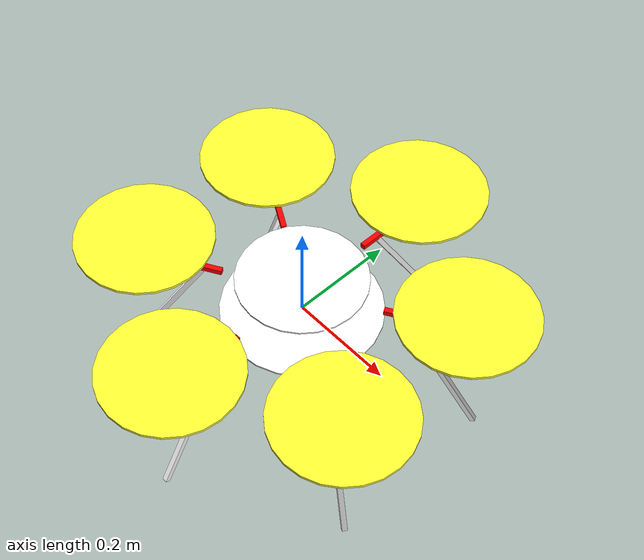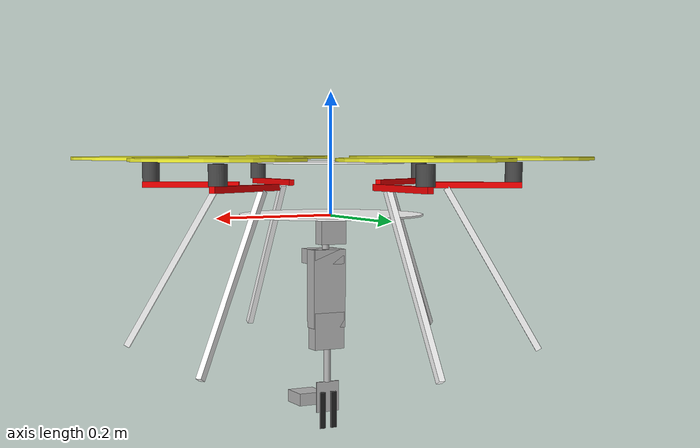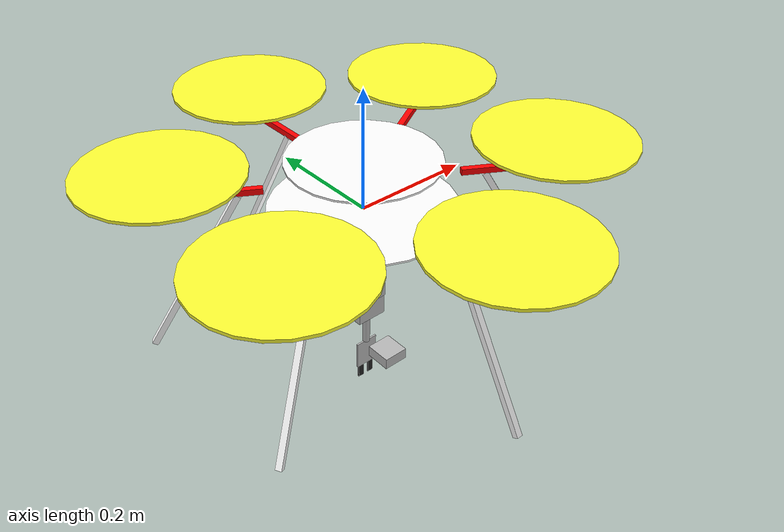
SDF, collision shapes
<?xml version="1.0" ?>
<sdf version="1.9">
  <model name="custom_hexa_arm">
    <static>false</static>
    <pose>0 0 0 0 0 0</pose>

<!-- ######################################## LOWER_PLATE # ######################################## -->
    <link name="base_link">
	<gravity>true</gravity>
	<pose>0 0 0.0015 0 0 0</pose>

      <inertial>
        <!-- Combined base+top+battery+electronics modeled as a thick regular-hexagon prism -->
        <!-- Parameters: M=1.9949 kg, circumradius R=0.15 m, thickness h=0.085 m -->
        <!-- Ixx = Iyy = (5/24) M R^2 + (M h^2)/12;  Izz = (5/12) M R^2;  CoM at z = h/2 -->
        <pose>0 0 0.0425 0 0 0</pose>
        <mass>1.9949</mass>
        <inertia>
          <ixx>0.0105521906</ixx>
          <ixy>0</ixy>
          <ixz>0</ixz>
          <iyy>0.0105521906</iyy>
          <iyz>0</iyz>
          <izz>0.0187021875</izz>
        </inertia>
      </inertial>

      <collision name="base_link_collision">
        <geometry>
          <cylinder>
            <radius>0.15</radius>
            <length>0.003</length>
          </cylinder>
        </geometry>
      </collision>

      <visual name="base_link_visual">
        <geometry>
          <mesh>
            <scale>0.0014 0.0014 0.0014</scale>
            <uri>file://custom_hexa/meshes/Lower_plate_CG.STL</uri>
          </mesh>
        </geometry>
        <material>
          <ambient>0.9 0.9 0.9 1</ambient>
          <diffuse>1.0 1.0 1.0 1</diffuse>
          <specular>0.8 0.8 0.8 1</specular>
        </material>
      </visual>

      <!-- IMU Sensor (modeled after ICM-42688-P) -->
      <sensor name="imu_sensor" type="imu">
        <pose>0 0 0.02 0 0 0</pose>
        <always_on>1</always_on>
        <update_rate>250</update_rate>
        <imu>
          <angular_velocity>
            <x>
              <noise type="gaussian">
                <mean>0</mean>
                <stddev>0.0003394</stddev>
                <dynamic_bias_stddev>3.8785e-05</dynamic_bias_stddev>
                <dynamic_bias_correlation_time>1000</dynamic_bias_correlation_time>
              </noise>
            </x>
            <y>
              <noise type="gaussian">
                <mean>0</mean>
                <stddev>0.0003394</stddev>
                <dynamic_bias_stddev>3.8785e-05</dynamic_bias_stddev>
                <dynamic_bias_correlation_time>1000</dynamic_bias_correlation_time>
              </noise>
            </y>
            <z>
              <noise type="gaussian">
                <mean>0</mean>
                <stddev>0.0003394</stddev>
                <dynamic_bias_stddev>3.8785e-05</dynamic_bias_stddev>
                <dynamic_bias_correlation_time>1000</dynamic_bias_correlation_time>
              </noise>
            </z>
          </angular_velocity>
          <linear_acceleration>
            <x>
              <noise type="gaussian">
                <mean>0</mean>
                <stddev>0.004</stddev>
                <dynamic_bias_stddev>0.006</dynamic_bias_stddev>
                <dynamic_bias_correlation_time>300</dynamic_bias_correlation_time>
              </noise>
            </x>
            <y>
              <noise type="gaussian">
                <mean>0</mean>
                <stddev>0.004</stddev>
                <dynamic_bias_stddev>0.006</dynamic_bias_stddev>
                <dynamic_bias_correlation_time>300</dynamic_bias_correlation_time>
              </noise>
            </y>
            <z>
              <noise type="gaussian">
                <mean>0</mean>
                <stddev>0.004</stddev>
                <dynamic_bias_stddev>0.006</dynamic_bias_stddev>
                <dynamic_bias_correlation_time>300</dynamic_bias_correlation_time>
              </noise>
            </z>
          </linear_acceleration>
        </imu>
      </sensor>

      <!-- Air Pressure Sensor (Barometer, modeled after BMP390) -->
      <sensor name="air_pressure_sensor" type="air_pressure">
        <always_on>1</always_on>
        <update_rate>50</update_rate>
        <air_pressure>
          <pressure>
            <noise type="gaussian">
              <mean>0</mean>
              <stddev>0.01</stddev>
            </noise>
          </pressure>
        </air_pressure>
      </sensor>

      <!-- GPS/NavSat Sensor (simplified for compatibility) -->
      <sensor name="navsat_sensor" type="navsat">
        <pose>0 0 0.03 0 0 0</pose>
        <always_on>1</always_on>
        <update_rate>10</update_rate>
      </sensor>

      <!-- Magnetometer Sensor (modeled after IIS2MDC) -->
      <sensor name="magnetometer_sensor" type="magnetometer">
        <pose>0 0 0.02 0 0 0</pose>
        <always_on>1</always_on>
        <update_rate>100</update_rate>
        <magnetometer>
          <!-- 3mgauss RMS: NOTE: noise is in tesla but sensor reports data in gauss -->
          <x>
            <noise type="gaussian">
              <stddev>0.0001</stddev>
            </noise>
          </x>
          <y>
            <noise type="gaussian">
              <stddev>0.0001</stddev>
            </noise>
          </y>
          <z>
            <noise type="gaussian">
              <stddev>0.0001</stddev>
            </noise>
          </z>
        </magnetometer>
      </sensor>      <!-- RGB Camera Sensor at ~15 Hz -->
    </link>
<!-- ####################################### /LOWER_PLATE # ######################################## -->

<!-- ######################################## TOP_PLATE ############################################ -->
  <link name="Top_plate_link">
  <gravity>true</gravity>
  <pose>0 0 0.0865 0 0 0</pose>

      <inertial>
        <!-- Visual-only inertial; mass is accounted for in base_link -->
        <pose>0 0 0 0 0 0</pose>
        <mass>0.001</mass>
        <inertia>
          <ixx>4.76e-06</ixx>
          <ixy>0</ixy>
          <ixz>0</ixz>
          <iyy>4.76e-06</iyy>
          <iyz>0</iyz>
          <izz>9.38e-06</izz>
        </inertia>
      </inertial>

      <collision name="top_plate_collision">
        <geometry>
          <cylinder>
            <radius>0.12</radius>
            <length>0.003</length>
          </cylinder>
        </geometry>
      </collision>

      <visual name="visual_Top_plate">
        <geometry>
          <mesh>
            <scale>0.0014 0.0014 0.0014</scale>
            <uri>file://custom_hexa/meshes/Top_plate_CG.STL</uri>
          </mesh>
        </geometry>
        <material>
          <ambient>0.9 0.9 0.9 1</ambient>
          <diffuse>1.0 1.0 1.0 1</diffuse>
          <specular>0.9 0.9 0.9 1</specular>
        </material>
      </visual>
    </link>

	<joint name='Lower_Top_joint' type='fixed'>
	  	<child>Top_plate_link</child>
	  	<parent>base_link</parent>
	</joint>
<!-- ####################################### /TOP_PLATE ############################################ -->

<!-- ##########################################  CAMERA  ########################################### -->

<!-- ##########################################  /CAMERA  ########################################## -->

<!-- ##########################################  IMU  ############################################## -->
    <link name='imu_link'>
      <pose>0 0 0.0865 0 0 3.1415927</pose>
      <inertial>
        <pose>0 0 0 0 -0 0</pose>
        <mass>0.0001</mass>
        <inertia>
          <ixx>1e-09</ixx>
          <ixy>0</ixy>
          <ixz>0</ixz>
          <iyy>1e-09</iyy>
          <iyz>0</iyz>
          <izz>1e-09</izz>
        </inertia>
      </inertial>

      <visual name="visual_imu">
	      <pose>0 0 0 0 0 3.1415927</pose>
        <geometry>
          <box>
			<size>0.01 0.02 0.02</size>
          </box>
        </geometry>
      </visual>
    </link>

    <joint name='imu_joint' type='fixed'>
      <child>imu_link</child>
      <parent>Top_plate_link</parent>
    </joint>
<!-- #########################################  /IMU  ############################################## -->

<!-- ############################################# ARM1 ############################################ -->
  <link name="Arm1_link">
  <gravity>true</gravity>
  <pose>0 0.15 0.055 0 0 1.57079632679</pose>

	<inertial>
    <pose>0.079425 0 -0.005 0 0 0</pose>
    <mass>0.0126</mass>
    <inertia>
      <ixx>3.44e-07</ixx>
      <ixy>0</ixy>
      <ixz>0</ixz>
      <iyy>2.66e-05</iyy>
      <iyz>0</iyz>
      <izz>2.66e-05</izz>
    </inertia>
  </inertial>

  <collision name="collision_Arm1">
    <pose>0.079425 0 -0.005 0 0 0</pose>
    <geometry>
      <box>
        <size>0.15885 0.01 0.01</size>
      </box>
    </geometry>
  </collision>

    <visual name="visual_Arm1">
      <pose>0.079425 0 -0.005 0 0 0</pose>
      <geometry>
        <box>
          <size>0.15885 0.01 0.01</size>
        </box>
      </geometry>
      <material>
        <ambient>0.8 0.0 0.0 1</ambient>
        <diffuse>1.0 0.0 0.0 1</diffuse>
        <specular>0.5 0.5 0.5 1</specular>
      </material>
    </visual>
	</link>

	<joint name='Lower_Arm1_joint' type='fixed'>
	  	<child>Arm1_link</child>
	  	<parent>base_link</parent>
	</joint>
<!-- ############################################ /ARM1 ############################################ -->

<!-- ############################################# ARM2 ############################################ -->
  <link name="Arm2_link">
  <gravity>true</gravity>
  <pose>0.129903810567 0.075 0.055 0 0 0.523598775598</pose>

      <inertial>
    	<pose>0.079425 0 -0.005 0 0 0</pose>
        <mass>0.0126</mass>
        <inertia>
            <ixx>3.44e-07</ixx>
          <ixy>0</ixy>
          <ixz>0</ixz>
          <iyy>2.66e-05</iyy>
          <iyz>0</iyz>
          <izz>2.66e-05</izz>
        </inertia>
      </inertial>

      <collision name="collision_Arm2">
        <pose>0.079425 0 -0.005 0 0 0</pose>
        <geometry>
          <box>
            <size>0.15885 0.01 0.01</size>
          </box>
        </geometry>
      </collision>

      <visual name="visual_Arm2">
        <pose>0.079425 0 -0.005 0 0 0</pose>
        <geometry>
          <box>
            <size>0.15885 0.01 0.01</size>
          </box>
        </geometry>
        <material>
          <ambient>0.8 0.0 0.0 1</ambient>
          <diffuse>1.0 0.0 0.0 1</diffuse>
          <specular>0.5 0.5 0.5 1</specular>
        </material>
      </visual>
    </link>

	<joint name='Lower_Arm2_joint' type='fixed'>
	  	<child>Arm2_link</child>
	  	<parent>base_link</parent>
	</joint>
<!-- ############################################ /ARM2 ############################################ -->

<!-- ############################################# ARM3 ############################################ -->
  <link name="Arm3_link">
  <gravity>true</gravity>
  <pose>0.129903810567 -0.075 0.055 0 0 -0.523598775598</pose>

      <inertial>
    	<pose>0.079425 0 -0.005 0 0 0</pose>
        <mass>0.0126</mass>
        <inertia>
            <ixx>3.44e-07</ixx>
          <ixy>0</ixy>
          <ixz>0</ixz>
          <iyy>2.66e-05</iyy>
          <iyz>0</iyz>
          <izz>2.66e-05</izz>
        </inertia>
      </inertial>

      <collision name="collision_Arm3">
        <pose>0.079425 0 -0.005 0 0 0</pose>
        <geometry>
          <box>
            <size>0.15885 0.01 0.01</size>
          </box>
        </geometry>
      </collision>

      <visual name="visual_Arm3">
        <pose>0.079425 0 -0.005 0 0 0</pose>
        <geometry>
          <box>
            <size>0.15885 0.01 0.01</size>
          </box>
        </geometry>
        <material>
          <ambient>0.8 0.0 0.0 1</ambient>
          <diffuse>1.0 0.0 0.0 1</diffuse>
          <specular>0.5 0.5 0.5 1</specular>
        </material>
      </visual>
    </link>

	<joint name='Lower_Arm3_joint' type='fixed'>
	  	<child>Arm3_link</child>
	  	<parent>base_link</parent>
	</joint>
<!-- ############################################ /ARM3 ############################################ -->

<!-- ############################################# ARM4 ############################################ -->
  <link name="Arm4_link">
  <gravity>true</gravity>
  <pose>0 -0.15 0.055 0 0 -1.57079632679</pose>

      <inertial>
    	<pose>0.079425 0 -0.005 0 0 0</pose>
        <mass>0.0126</mass>
        <inertia>
            <ixx>3.44e-07</ixx>
          <ixy>0</ixy>
          <ixz>0</ixz>
          <iyy>2.66e-05</iyy>
          <iyz>0</iyz>
          <izz>2.66e-05</izz>
        </inertia>
      </inertial>

      <collision name="collision_Arm4">
        <pose>0.079425 0 -0.005 0 0 0</pose>
        <geometry>
          <box>
            <size>0.15885 0.01 0.01</size>
          </box>
        </geometry>
      </collision>

      <visual name="visual_Arm4">
        <pose>0.079425 0 -0.005 0 0 0</pose>
        <geometry>
          <box>
            <size>0.15885 0.01 0.01</size>
          </box>
        </geometry>
        <material>
          <ambient>0.8 0.0 0.0 1</ambient>
          <diffuse>1.0 0.0 0.0 1</diffuse>
          <specular>0.5 0.5 0.5 1</specular>
        </material>
      </visual>
    </link>

	<joint name='Lower_Arm4_joint' type='fixed'>
	  	<child>Arm4_link</child>
	  	<parent>base_link</parent>
	</joint>
<!-- ############################################ /ARM4 ############################################ -->

<!-- ############################################# ARM5 ############################################ -->
  <link name="Arm5_link">
  <gravity>true</gravity>
  <pose>-0.129903810567 -0.075 0.055 0 0 3.66519142919</pose>

      <inertial>
    	<pose>0.079425 0 -0.005 0 0 0</pose>
        <mass>0.0126</mass>
        <inertia>
            <ixx>3.44e-07</ixx>
          <ixy>0</ixy>
          <ixz>0</ixz>
          <iyy>2.66e-05</iyy>
          <iyz>0</iyz>
          <izz>2.66e-05</izz>
        </inertia>
      </inertial>

      <collision name="collision_Arm5">
        <pose>0.079425 0 -0.005 0 0 0</pose>
        <geometry>
          <box>
            <size>0.15885 0.01 0.01</size>
          </box>
        </geometry>
      </collision>

      <visual name="visual_Arm5">
        <pose>0.079425 0 -0.005 0 0 0</pose>
        <geometry>
          <box>
            <size>0.15885 0.01 0.01</size>
          </box>
        </geometry>
        <material>
          <ambient>0.8 0.0 0.0 1</ambient>
          <diffuse>1.0 0.0 0.0 1</diffuse>
          <specular>0.5 0.5 0.5 1</specular>
        </material>
      </visual>
    </link>

	<joint name='Lower_Arm5_joint' type='fixed'>
	  	<child>Arm5_link</child>
	  	<parent>base_link</parent>
	</joint>
<!-- ############################################ /ARM5 ############################################ -->

<!-- ############################################# ARM6 ############################################ -->
  <link name="Arm6_link">
  <gravity>true</gravity>
  <pose>-0.129903810567 0.075 0.055 0 0 2.61799387799</pose>

      <inertial>
    	<pose>0.079425 0 -0.005 0 0 0</pose>
        <mass>0.0126</mass>
        <inertia>
            <ixx>3.44e-07</ixx>
          <ixy>0</ixy>
          <ixz>0</ixz>
          <iyy>2.66e-05</iyy>
          <iyz>0</iyz>
          <izz>2.66e-05</izz>
        </inertia>
      </inertial>

      <collision name="collision_Arm6">
        <pose>0.079425 0 -0.005 0 0 0</pose>
        <geometry>
          <box>
            <size>0.15885 0.01 0.01</size>
          </box>
        </geometry>
      </collision>

      <visual name="visual_Arm6">
        <pose>0.079425 0 -0.005 0 0 0</pose>
        <geometry>
          <box>
            <size>0.15885 0.01 0.01</size>
          </box>
        </geometry>
        <material>
          <ambient>0.8 0.0 0.0 1</ambient>
          <diffuse>1.0 0.0 0.0 1</diffuse>
          <specular>0.5 0.5 0.5 1</specular>
        </material>
      </visual>
    </link>

	<joint name='Lower_Arm6_joint' type='fixed'>
	  	<child>Arm6_link</child>
	  	<parent>base_link</parent>
	</joint>
<!-- ############################################ /ARM6 ############################################ -->

<!-- #########################################  ROTOR0  ############################################ -->
<link name='rotor_0'>
  <pose>-0.255691 0.1475 0.093 0 0 2.09439510239</pose>
      <inertial>
        <mass>0.008</mass>
        <inertia>
          <ixx>5.205e-05</ixx>
          <ixy>0</ixy>
          <ixz>0</ixz>
          <iyy>2.667e-07</iyy>
          <iyz>0</iyz>
          <izz>5.230e-05</izz>
        </inertia>
      </inertial>

      <collision name='rotor_0_collision'>
        <geometry>
          <cylinder>
            <length>0.005</length>
            <radius>0.128</radius>
          </cylinder>
        </geometry>
        <surface>
          <contact>
            <collide_bitmask>0x00</collide_bitmask>
            <ode/>
          </contact>
          <friction>
            <ode/>
          </friction>
        </surface>
      </collision>

      <visual name='rotor_0_visual'>
        <geometry>
          <mesh>
            <scale>0.001 0.001 0.001</scale>
            <uri>file://custom_hexa/meshes/prop_cw_CG.stl</uri>
          </mesh>
        </geometry>
        <material>
          <ambient>1.0 1.0 0.0 1</ambient>
          <diffuse>1.0 1.0 0.2 1</diffuse>
          <specular>0.8 0.8 0.0 1</specular>
        </material>
      </visual>
    </link>

    <joint name='rotor_0_joint' type='revolute'>
      <child>rotor_0</child>
      <parent>base_link</parent>
      <axis>
  <xyz expressed_in="__model__">0 0 1</xyz>
        <limit>
          <lower>-1e+16</lower>
          <upper>1e+16</upper>
          <!-- Increased effort limit to avoid artificial torque saturation during spin-up/control -->
          <effort>100000</effort>
          <!-- Set a large positive velocity limit to avoid artificial clamping -->
          <velocity>4000</velocity>
        </limit>
        <dynamics>
          <damping>0.005</damping>
        </dynamics>
      </axis>
      <physics>
        <ode>
          <implicit_spring_damper>1</implicit_spring_damper>
        </ode>
      </physics>
    </joint>
<!-- ########################################  /ROTOR0  ############################################ -->

<!-- ##########################################  MOTOR0  ############################################ -->
  <link name='motor_0'>
    <!-- Place at radius 0.295 and z=0.071 -->
    <pose>-0.255691 0.1475 0.071 0 0 2.09439510239</pose>
    <inertial>
      <mass>0.072</mass>
      <inertia>
        <ixx>8.928e-06</ixx>
        <ixy>0</ixy>
        <ixz>0</ixz>
        <iyy>8.928e-06</iyy>
        <iyz>0</iyz>
        <izz>7.056e-06</izz>
      </inertia>
    </inertial>
    <collision name='motor_0_collision'>
      <geometry>
        <cylinder>
          <length>0.032</length>
          <radius>0.014</radius>
        </cylinder>
      </geometry>
    </collision>
    <visual name='motor_0_visual'>
      <geometry>
        <cylinder>
          <length>0.032</length>
          <radius>0.014</radius>
        </cylinder>
      </geometry>
      <material>
        <ambient>0.2 0.2 0.2 1</ambient>
        <diffuse>0.3 0.3 0.3 1</diffuse>
        <specular>0.6 0.6 0.6 1</specular>
      </material>
    </visual>
  </link>
  <joint name='base_motor_0' type='fixed'>
    <child>motor_0</child>
    <parent>base_link</parent>
  </joint>

<!-- #########################################  ROTOR1  ############################################ -->
<link name='rotor_1'>
  <pose>0.255691 -0.1475 0.093 0 0 -2.09439510239</pose>
      <inertial>
        <mass>0.008</mass>
        <inertia>
          <ixx>5.205e-05</ixx>
          <ixy>0</ixy>
          <ixz>0</ixz>
          <iyy>2.667e-07</iyy>
          <iyz>0</iyz>
          <izz>5.230e-05</izz>
        </inertia>
      </inertial>

      <collision name='rotor_1_collision'>
        <geometry>
          <cylinder>
            <length>0.005</length>
            <radius>0.128</radius>
          </cylinder>
        </geometry>
        <surface>
          <contact>
            <collide_bitmask>0x00</collide_bitmask>
            <ode/>
          </contact>
          <friction>
            <ode/>
          </friction>
        </surface>
      </collision>

      <visual name='rotor_1_visual'>
        <geometry>
          <mesh>
            <scale>0.001 0.001 0.001</scale>
            <uri>file://custom_hexa/meshes/prop_ccw_CG.stl</uri>
          </mesh>
        </geometry>
        <material>
          <ambient>1.0 1.0 0.0 1</ambient>
          <diffuse>1.0 1.0 0.2 1</diffuse>
          <specular>0.8 0.8 0.0 1</specular>
        </material>
      </visual>
    </link>

    <joint name='rotor_1_joint' type='revolute'>
      <child>rotor_1</child>
      <parent>base_link</parent>
      <axis>
  <xyz expressed_in="__model__">0 0 1</xyz>
        <limit>
          <lower>-1e+16</lower>
          <upper>1e+16</upper>
          <effort>100000</effort>
          <velocity>4000</velocity>
        </limit>
        <dynamics>
          <damping>0.005</damping>
        </dynamics>
      </axis>
      <physics>
        <ode>
          <implicit_spring_damper>1</implicit_spring_damper>
        </ode>
      </physics>
    </joint>
<!-- ########################################  /ROTOR1  ############################################ -->

<!-- ##########################################  MOTOR1  ############################################ -->
  <link name='motor_1'>
    <pose>0.255691 -0.1475 0.071 0 0 -2.09439510239</pose>
    <inertial>
      <mass>0.072</mass>
      <inertia>
        <ixx>8.928e-06</ixx>
        <ixy>0</ixy>
        <ixz>0</ixz>
        <iyy>8.928e-06</iyy>
        <iyz>0</iyz>
        <izz>7.056e-06</izz>
      </inertia>
    </inertial>
    <collision name='motor_1_collision'>
      <geometry>
        <cylinder>
          <length>0.032</length>
          <radius>0.014</radius>
        </cylinder>
      </geometry>
    </collision>
    <visual name='motor_1_visual'>
      <geometry>
        <cylinder>
          <length>0.032</length>
          <radius>0.014</radius>
        </cylinder>
      </geometry>
      <material>
        <ambient>0.2 0.2 0.2 1</ambient>
        <diffuse>0.3 0.3 0.3 1</diffuse>
        <specular>0.6 0.6 0.6 1</specular>
      </material>
    </visual>
  </link>
  <joint name='base_motor_1' type='fixed'>
    <child>motor_1</child>
    <parent>base_link</parent>
  </joint>

<!-- #########################################  ROTOR2  ############################################ -->
<link name='rotor_2'>
  <pose>-0.255691 -0.1475 0.093 0 0 2.09439510239</pose>
      <inertial>
        <mass>0.008</mass>
        <inertia>
          <ixx>5.205e-05</ixx>
          <ixy>0</ixy>
          <ixz>0</ixz>
          <iyy>2.667e-07</iyy>
          <iyz>0</iyz>
          <izz>5.230e-05</izz>
        </inertia>
      </inertial>

      <collision name='rotor_2_collision'>
        <geometry>
          <cylinder>
            <length>0.005</length>
            <radius>0.128</radius>
          </cylinder>
        </geometry>
        <surface>
          <contact>
            <collide_bitmask>0x00</collide_bitmask>
            <ode/>
          </contact>
          <friction>
            <ode/>
          </friction>
        </surface>
      </collision>

      <visual name='rotor_2_visual'>
        <geometry>
          <mesh>
            <scale>0.001 0.001 0.001</scale>
            <uri>file://custom_hexa/meshes/prop_ccw_CG.stl</uri>
          </mesh>
        </geometry>
        <material>
          <ambient>1.0 1.0 0.0 1</ambient>
          <diffuse>1.0 1.0 0.2 1</diffuse>
          <specular>0.8 0.8 0.0 1</specular>
        </material>
      </visual>
    </link>

    <joint name='rotor_2_joint' type='revolute'>
      <child>rotor_2</child>
      <parent>base_link</parent>
      <axis>
  <xyz expressed_in="__model__">0 0 1</xyz>
        <limit>
          <lower>-1e+16</lower>
          <upper>1e+16</upper>
          <effort>100000</effort>
          <velocity>4000</velocity>
        </limit>
        <dynamics>
          <damping>0.005</damping>
        </dynamics>
      </axis>
      <physics>
        <ode>
          <implicit_spring_damper>1</implicit_spring_damper>
        </ode>
      </physics>
    </joint>
<!-- ########################################  /ROTOR2  ############################################ -->

<!-- ##########################################  MOTOR2  ############################################ -->
  <link name='motor_2'>
    <pose>-0.255691 -0.1475 0.071 0 0 2.09439510239</pose>
    <inertial>
      <mass>0.072</mass>
      <inertia>
        <ixx>8.928e-06</ixx>
        <ixy>0</ixy>
        <ixz>0</ixz>
        <iyy>8.928e-06</iyy>
        <iyz>0</iyz>
        <izz>7.056e-06</izz>
      </inertia>
    </inertial>
    <collision name='motor_2_collision'>
      <geometry>
        <cylinder>
          <length>0.032</length>
          <radius>0.014</radius>
        </cylinder>
      </geometry>
    </collision>
    <visual name='motor_2_visual'>
      <geometry>
        <cylinder>
          <length>0.032</length>
          <radius>0.014</radius>
        </cylinder>
      </geometry>
      <material>
        <ambient>0.2 0.2 0.2 1</ambient>
        <diffuse>0.3 0.3 0.3 1</diffuse>
        <specular>0.6 0.6 0.6 1</specular>
      </material>
    </visual>
  </link>
  <joint name='base_motor_2' type='fixed'>
    <child>motor_2</child>
    <parent>base_link</parent>
  </joint>

<!-- #########################################  ROTOR3  ############################################ -->
<link name='rotor_3'>
  <pose>0.255691 0.1475 0.093 0 0 0</pose>
      <inertial>
        <mass>0.008</mass>
        <inertia>
          <ixx>5.205e-05</ixx>
          <ixy>0</ixy>
          <ixz>0</ixz>
          <iyy>2.667e-07</iyy>
          <iyz>0</iyz>
          <izz>5.230e-05</izz>
        </inertia>
      </inertial>

      <collision name='rotor_3_collision'>
        <geometry>
          <cylinder>
            <length>0.005</length>
            <radius>0.128</radius>
          </cylinder>
        </geometry>
        <surface>
          <contact>
            <collide_bitmask>0x00</collide_bitmask>
            <ode/>
          </contact>
          <friction>
            <ode/>
          </friction>
        </surface>
      </collision>

      <visual name='rotor_3_visual'>
        <geometry>
          <mesh>
            <scale>0.001 0.001 0.001</scale>
            <uri>file://custom_hexa/meshes/prop_cw_CG.stl</uri>
          </mesh>
        </geometry>
        <material>
          <ambient>1.0 1.0 0.0 1</ambient>
          <diffuse>1.0 1.0 0.2 1</diffuse>
          <specular>0.8 0.8 0.0 1</specular>
        </material>
      </visual>
    </link>

    <joint name='rotor_3_joint' type='revolute'>
      <child>rotor_3</child>
      <parent>base_link</parent>
      <axis>
  <xyz expressed_in="__model__">0 0 1</xyz>
        <limit>
          <lower>-1e+16</lower>
          <upper>1e+16</upper>
          <effort>100000</effort>
          <velocity>4000</velocity>
        </limit>
        <dynamics>
          <damping>0.005</damping>
        </dynamics>
      </axis>
      <physics>
        <ode>
          <implicit_spring_damper>1</implicit_spring_damper>
        </ode>
      </physics>
    </joint>
<!-- ########################################  /ROTOR3  ############################################ -->

<!-- ##########################################  MOTOR3  ############################################ -->
  <link name='motor_3'>
    <pose>0.255691 0.1475 0.071 0 0 0</pose>
    <inertial>
      <mass>0.072</mass>
      <inertia>
        <ixx>8.928e-06</ixx>
        <ixy>0</ixy>
        <ixz>0</ixz>
        <iyy>8.928e-06</iyy>
        <iyz>0</iyz>
        <izz>7.056e-06</izz>
      </inertia>
    </inertial>
    <collision name='motor_3_collision'>
      <geometry>
        <cylinder>
          <length>0.032</length>
          <radius>0.014</radius>
        </cylinder>
      </geometry>
    </collision>
    <visual name='motor_3_visual'>
      <geometry>
        <cylinder>
          <length>0.032</length>
          <radius>0.014</radius>
        </cylinder>
      </geometry>
      <material>
        <ambient>0.2 0.2 0.2 1</ambient>
        <diffuse>0.3 0.3 0.3 1</diffuse>
        <specular>0.6 0.6 0.6 1</specular>
      </material>
    </visual>
  </link>
  <joint name='base_motor_3' type='fixed'>
    <child>motor_3</child>
    <parent>base_link</parent>
  </joint>

<!-- #########################################  ROTOR4  ############################################ -->
  <link name='rotor_4'>
  <pose>0 0.295 0.093 0 0 0</pose>
      <inertial>
        <mass>0.008</mass>
        <inertia>
          <ixx>5.205e-05</ixx>
          <ixy>0</ixy>
          <ixz>0</ixz>
          <iyy>2.667e-07</iyy>
          <iyz>0</iyz>
          <izz>5.230e-05</izz>
        </inertia>
      </inertial>

      <collision name='rotor_4_collision'>
        <geometry>
          <cylinder>
            <length>0.005</length>
            <radius>0.128</radius>
          </cylinder>
        </geometry>
        <surface>
          <contact>
            <collide_bitmask>0x00</collide_bitmask>
            <ode/>
          </contact>
          <friction>
            <ode/>
          </friction>
        </surface>
      </collision>

      <visual name='rotor_4_visual'>
        <geometry>
          <mesh>
            <scale>0.001 0.001 0.001</scale>
            <uri>file://custom_hexa/meshes/prop_ccw_CG.stl</uri>
          </mesh>
        </geometry>
        <material>
          <ambient>1.0 1.0 0.0 1</ambient>
          <diffuse>1.0 1.0 0.2 1</diffuse>
          <specular>0.8 0.8 0.0 1</specular>
        </material>
      </visual>
    </link>

    <joint name='rotor_4_joint' type='revolute'>
      <child>rotor_4</child>
      <parent>base_link</parent>
      <axis>
  <xyz expressed_in="__model__">0 0 1</xyz>
        <limit>
          <lower>-1e+16</lower>
          <upper>1e+16</upper>
          <effort>100000</effort>
          <velocity>4000</velocity>
        </limit>
        <dynamics>
          <damping>0.005</damping>
        </dynamics>
      </axis>
      <physics>
        <ode>
          <implicit_spring_damper>1</implicit_spring_damper>
        </ode>
      </physics>
    </joint>
<!-- ########################################  /ROTOR4  ############################################ -->

<!-- ##########################################  MOTOR4  ############################################ -->
  <link name='motor_4'>
    <pose>0 0.295 0.071 0 0 0</pose>
    <inertial>
      <mass>0.072</mass>
      <inertia>
        <ixx>8.928e-06</ixx>
        <ixy>0</ixy>
        <ixz>0</ixz>
        <iyy>8.928e-06</iyy>
        <iyz>0</iyz>
        <izz>7.056e-06</izz>
      </inertia>
    </inertial>
    <collision name='motor_4_collision'>
      <geometry>
        <cylinder>
          <length>0.032</length>
          <radius>0.014</radius>
        </cylinder>
      </geometry>
    </collision>
    <visual name='motor_4_visual'>
      <geometry>
        <cylinder>
          <length>0.032</length>
          <radius>0.014</radius>
        </cylinder>
      </geometry>
      <material>
        <ambient>0.2 0.2 0.2 1</ambient>
        <diffuse>0.3 0.3 0.3 1</diffuse>
        <specular>0.6 0.6 0.6 1</specular>
      </material>
    </visual>
  </link>
  <joint name='base_motor_4' type='fixed'>
    <child>motor_4</child>
    <parent>base_link</parent>
  </joint>

<!-- #########################################  ROTOR5  ############################################ -->
<link name='rotor_5'>
  <pose>0 -0.295 0.093 0 0 -2.09439510239</pose>
      <inertial>
        <mass>0.008</mass>
        <inertia>
          <ixx>5.205e-05</ixx>
          <ixy>0</ixy>
          <ixz>0</ixz>
          <iyy>2.667e-07</iyy>
          <iyz>0</iyz>
          <izz>5.230e-05</izz>
        </inertia>
      </inertial>

      <collision name='rotor_5_collision'>
        <geometry>
          <cylinder>
            <length>0.005</length>
            <radius>0.128</radius>
          </cylinder>
        </geometry>
        <surface>
          <contact>
            <collide_bitmask>0x00</collide_bitmask>
            <ode/>
          </contact>
          <friction>
            <ode/>
          </friction>
        </surface>
      </collision>

      <visual name='rotor_5_visual'>
        <geometry>
          <mesh>
            <scale>0.001 0.001 0.001</scale>
            <!-- Use clockwise prop mesh to alternate torque (rotors 0,3,5 cw; 1,2,4 ccw) -->
            <uri>file://custom_hexa/meshes/prop_cw_CG.stl</uri>
          </mesh>
        </geometry>
        <material>
          <ambient>1.0 1.0 0.0 1</ambient>
          <diffuse>1.0 1.0 0.2 1</diffuse>
          <specular>0.8 0.8 0.0 1</specular>
        </material>
      </visual>
    </link>

    <joint name='rotor_5_joint' type='revolute'>
      <child>rotor_5</child>
      <parent>base_link</parent>
      <axis>
  <xyz expressed_in="__model__">0 0 1</xyz>
        <limit>
          <lower>-1e+16</lower>
          <upper>1e+16</upper>
          <effort>100000</effort>
          <velocity>4000</velocity>
        </limit>
        <dynamics>
          <damping>0.005</damping>
        </dynamics>
      </axis>
      <physics>
        <ode>
          <implicit_spring_damper>1</implicit_spring_damper>
        </ode>
      </physics>
    </joint>
<!-- ########################################  /ROTOR5  ############################################ -->

<!-- ##########################################  MOTOR5  ############################################ -->
  <link name='motor_5'>
    <pose>0 -0.295 0.071 0 0 -2.09439510239</pose>
    <inertial>
      <mass>0.072</mass>
      <inertia>
        <ixx>8.928e-06</ixx>
        <ixy>0</ixy>
        <ixz>0</ixz>
        <iyy>8.928e-06</iyy>
        <iyz>0</iyz>
        <izz>7.056e-06</izz>
      </inertia>
    </inertial>
    <collision name='motor_5_collision'>
      <geometry>
        <cylinder>
          <length>0.032</length>
          <radius>0.014</radius>
        </cylinder>
      </geometry>
    </collision>
    <visual name='motor_5_visual'>
      <geometry>
        <cylinder>
          <length>0.032</length>
          <radius>0.014</radius>
        </cylinder>
      </geometry>
      <material>
        <ambient>0.2 0.2 0.2 1</ambient>
        <diffuse>0.3 0.3 0.3 1</diffuse>
        <specular>0.6 0.6 0.6 1</specular>
      </material>
    </visual>
  </link>
  <joint name='base_motor_5' type='fixed'>
    <child>motor_5</child>
    <parent>base_link</parent>
  </joint>

<!-- ######################################### LANDING GEAR STRUT 1 ################################# -->
<link name="landing_gear_1">
  <!-- Position at Arm1 location, radially outward (90° + 180°), 30° tilt from vertical -->
  <pose>0 0.1874 0.045 0 0.523598776 -1.57079632679</pose>

  <inertial>
    <pose>0 0 -0.151575 0 0 0</pose>
    <mass>0.02825</mass>
    <inertia>
      <ixx>2.17e-04</ixx>
      <ixy>0</ixy>
      <ixz>0</ixz>
      <iyy>2.17e-04</iyy>
      <iyz>0</iyz>
      <izz>7.73e-07</izz>
    </inertia>
  </inertial>

  <collision name="landing_gear_1_collision">
    <pose>0 0 -0.151575 0 0 0</pose>
    <geometry>
      <box>
        <size>0.01 0.01 0.30315</size>
      </box>
    </geometry>
  </collision>

  <visual name="landing_gear_1_visual">
    <pose>0 0 -0.151575 0 0 0</pose>
    <geometry>
      <box>
        <size>0.01 0.01 0.30315</size>
      </box>
    </geometry>
    <material>
      <ambient>1.0 1.0 1.0 1</ambient>
      <diffuse>1.0 1.0 1.0 1</diffuse>
      <specular>0.8 0.8 0.8 1</specular>
    </material>
  </visual>
</link>

<joint name="base_landing_gear_1" type="fixed">
  <child>landing_gear_1</child>
  <parent>base_link</parent>
</joint>

<!-- ######################################### /LANDING GEAR STRUT 1 ############################### -->

<!-- ######################################### LANDING GEAR STRUT 2 ################################# -->
<link name="landing_gear_2">
  <!-- Position at Arm2 location, radially outward (30° + 180°), 30° tilt from vertical -->
  <pose>0.162293160669 0.0937 0.045 0 0.523598776 3.66519142919</pose>

  <inertial>
    <pose>0 0 -0.151575 0 0 0</pose>
    <mass>0.02825</mass>
    <inertia>
      <ixx>2.17e-04</ixx>
      <ixy>0</ixy>
      <ixz>0</ixz>
      <iyy>2.17e-04</iyy>
      <iyz>0</iyz>
      <izz>7.73e-07</izz>
    </inertia>
  </inertial>

  <collision name="landing_gear_2_collision">
    <pose>0 0 -0.151575 0 0 0</pose>
    <geometry>
      <box>
        <size>0.01 0.01 0.30315</size>
      </box>
    </geometry>
  </collision>

  <visual name="landing_gear_2_visual">
    <pose>0 0 -0.151575 0 0 0</pose>
    <geometry>
      <box>
        <size>0.01 0.01 0.30315</size>
      </box>
    </geometry>
    <material>
      <ambient>1.0 1.0 1.0 1</ambient>
      <diffuse>1.0 1.0 1.0 1</diffuse>
      <specular>0.8 0.8 0.8 1</specular>
    </material>
  </visual>
</link>

<joint name="base_landing_gear_2" type="fixed">
  <child>landing_gear_2</child>
  <parent>base_link</parent>
</joint>

<!-- ######################################### /LANDING GEAR STRUT 2 ############################### -->

<!-- ######################################### LANDING GEAR STRUT 3 ################################# -->
<link name="landing_gear_3">
  <!-- Position at Arm3 location, radially outward (-30° + 180°), 30° tilt from vertical -->
  <pose>0.162293160669 -0.0937 0.045 0 0.523598776 2.61799387799</pose>

  <inertial>
    <pose>0 0 -0.151575 0 0 0</pose>
    <mass>0.02825</mass>
    <inertia>
      <ixx>2.17e-04</ixx>
      <ixy>0</ixy>
      <ixz>0</ixz>
      <iyy>2.17e-04</iyy>
      <iyz>0</iyz>
      <izz>7.73e-07</izz>
    </inertia>
  </inertial>

  <collision name="landing_gear_3_collision">
    <pose>0 0 -0.151575 0 0 0</pose>
    <geometry>
      <box>
        <size>0.01 0.01 0.30315</size>
      </box>
    </geometry>
  </collision>

  <visual name="landing_gear_3_visual">
    <pose>0 0 -0.151575 0 0 0</pose>
    <geometry>
      <box>
        <size>0.01 0.01 0.30315</size>
      </box>
    </geometry>
    <material>
      <ambient>1.0 1.0 1.0 1</ambient>
      <diffuse>1.0 1.0 1.0 1</diffuse>
      <specular>0.8 0.8 0.8 1</specular>
    </material>
  </visual>
</link>

<joint name="base_landing_gear_3" type="fixed">
  <child>landing_gear_3</child>
  <parent>base_link</parent>
</joint>

<!-- ######################################### /LANDING GEAR STRUT 3 ############################### -->

<!-- ######################################### LANDING GEAR STRUT 4 ################################# -->
<link name="landing_gear_4">
  <!-- Position at Arm4 location, radially outward (-90° + 180°), 30° tilt from vertical -->
  <pose>0 -0.1874 0.045 0 0.523598776 1.57079632679</pose>

  <inertial>
    <pose>0 0 -0.151575 0 0 0</pose>
    <mass>0.02825</mass>
    <inertia>
      <ixx>2.17e-04</ixx>
      <ixy>0</ixy>
      <ixz>0</ixz>
      <iyy>2.17e-04</iyy>
      <iyz>0</iyz>
      <izz>7.73e-07</izz>
    </inertia>
  </inertial>

  <collision name="landing_gear_4_collision">
    <pose>0 0 -0.151575 0 0 0</pose>
    <geometry>
      <box>
        <size>0.01 0.01 0.30315</size>
      </box>
    </geometry>
  </collision>

  <visual name="landing_gear_4_visual">
    <pose>0 0 -0.151575 0 0 0</pose>
    <geometry>
      <box>
        <size>0.01 0.01 0.30315</size>
      </box>
    </geometry>
    <material>
      <ambient>1.0 1.0 1.0 1</ambient>
      <diffuse>1.0 1.0 1.0 1</diffuse>
      <specular>0.8 0.8 0.8 1</specular>
    </material>
  </visual>
</link>

<joint name="base_landing_gear_4" type="fixed">
  <child>landing_gear_4</child>
  <parent>base_link</parent>
</joint>

<!-- ######################################### /LANDING GEAR STRUT 4 ############################### -->

<!-- ######################################### LANDING GEAR STRUT 5 ################################# -->
<link name="landing_gear_5">
  <!-- Position at Arm5 location, radially outward (210° + 180°), 30° tilt from vertical -->
  <pose>-0.162293160669 -0.0937 0.045 0 0.523598776 0.523598775598</pose>

  <inertial>
    <pose>0 0 -0.151575 0 0 0</pose>
    <mass>0.02825</mass>
    <inertia>
      <ixx>2.17e-04</ixx>
      <ixy>0</ixy>
      <ixz>0</ixz>
      <iyy>2.17e-04</iyy>
      <iyz>0</iyz>
      <izz>7.73e-07</izz>
    </inertia>
  </inertial>

  <collision name="landing_gear_5_collision">
    <pose>0 0 -0.151575 0 0 0</pose>
    <geometry>
      <box>
        <size>0.01 0.01 0.30315</size>
      </box>
    </geometry>
  </collision>

  <visual name="landing_gear_5_visual">
    <pose>0 0 -0.151575 0 0 0</pose>
    <geometry>
      <box>
        <size>0.01 0.01 0.30315</size>
      </box>
    </geometry>
    <material>
      <ambient>1.0 1.0 1.0 1</ambient>
      <diffuse>1.0 1.0 1.0 1</diffuse>
      <specular>0.8 0.8 0.8 1</specular>
    </material>
  </visual>
</link>

<joint name="base_landing_gear_5" type="fixed">
  <child>landing_gear_5</child>
  <parent>base_link</parent>
</joint>

<!-- ######################################### /LANDING GEAR STRUT 5 ############################### -->

<!-- ######################################### LANDING GEAR STRUT 6 ################################# -->
<link name="landing_gear_6">
  <!-- Position at Arm6 location, radially outward (150° + 180°), 30° tilt from vertical -->
  <pose>-0.162293160669 0.0937 0.045 0 0.523598776 -0.523598775598</pose>

  <inertial>
    <pose>0 0 -0.151575 0 0 0</pose>
    <mass>0.02825</mass>
    <inertia>
      <ixx>2.17e-04</ixx>
      <ixy>0</ixy>
      <ixz>0</ixz>
      <iyy>2.17e-04</iyy>
      <iyz>0</iyz>
      <izz>7.73e-07</izz>
    </inertia>
  </inertial>

  <collision name="landing_gear_6_collision">
    <pose>0 0 -0.151575 0 0 0</pose>
    <geometry>
      <box>
        <size>0.01 0.01 0.30315</size>
      </box>
    </geometry>
  </collision>

  <visual name="landing_gear_6_visual">
    <pose>0 0 -0.151575 0 0 0</pose>
    <geometry>
      <box>
        <size>0.01 0.01 0.30315</size>
      </box>
    </geometry>
    <material>
      <ambient>1.0 1.0 1.0 1</ambient>
      <diffuse>1.0 1.0 1.0 1</diffuse>
      <specular>0.8 0.8 0.8 1</specular>
    </material>
  </visual>
</link>

<joint name="base_landing_gear_6" type="fixed">
  <child>landing_gear_6</child>
  <parent>base_link</parent>
</joint>

<!-- ######################################### /LANDING GEAR STRUT 6 ############################### -->

        <!-- motor plugins -->

        <!-- Gazebo Harmonic Multicopter motor model plugins -->
        <!-- Motor: SunnySky X2216 KV1250, Battery: 4S LiPo (14.8V), Propeller: 11x5.7" CF -->
        <plugin filename="gz-sim-multicopter-motor-model-system" name="gz::sim::systems::MulticopterMotorModel">
          <robotNamespace>custom_hexa_arm_0</robotNamespace>
          <jointName>rotor_0_joint</jointName>
          <linkName>rotor_0</linkName>
          <turningDirection>cw</turningDirection>
          <timeConstantUp>0.015</timeConstantUp>
          <timeConstantDown>0.015</timeConstantDown>
          <maxRotVelocity>820.0</maxRotVelocity>
          <motorConstant>2.11e-05</motorConstant>
          <momentConstant>0.0168</momentConstant>
          <commandSubTopic>command/motor_speed</commandSubTopic>
          <actuator_number>0</actuator_number>
          <rotorDragCoefficient>8.06428e-05</rotorDragCoefficient>
          <rollingMomentCoefficient>1e-06</rollingMomentCoefficient>
          <rotorVelocitySlowdownSim>10</rotorVelocitySlowdownSim>
          <motorType>velocity</motorType>
        </plugin>
        <plugin filename="gz-sim-multicopter-motor-model-system" name="gz::sim::systems::MulticopterMotorModel">
          <robotNamespace>custom_hexa_arm_0</robotNamespace>
          <jointName>rotor_1_joint</jointName>
          <linkName>rotor_1</linkName>
          <turningDirection>ccw</turningDirection>
          <timeConstantUp>0.015</timeConstantUp>
          <timeConstantDown>0.015</timeConstantDown>
          <maxRotVelocity>820.0</maxRotVelocity>
          <motorConstant>2.11e-05</motorConstant>
          <momentConstant>0.0168</momentConstant>
          <commandSubTopic>command/motor_speed</commandSubTopic>
          <actuator_number>1</actuator_number>
          <rotorDragCoefficient>8.06428e-05</rotorDragCoefficient>
          <rollingMomentCoefficient>1e-06</rollingMomentCoefficient>
          <rotorVelocitySlowdownSim>10</rotorVelocitySlowdownSim>
          <motorType>velocity</motorType>
        </plugin>
        <plugin filename="gz-sim-multicopter-motor-model-system" name="gz::sim::systems::MulticopterMotorModel">
          <robotNamespace>custom_hexa_arm_0</robotNamespace>
          <jointName>rotor_2_joint</jointName>
          <linkName>rotor_2</linkName>
          <turningDirection>ccw</turningDirection>
          <timeConstantUp>0.015</timeConstantUp>
          <timeConstantDown>0.015</timeConstantDown>
          <maxRotVelocity>820.0</maxRotVelocity>
          <motorConstant>2.11e-05</motorConstant>
          <momentConstant>0.0168</momentConstant>
          <commandSubTopic>command/motor_speed</commandSubTopic>
          <actuator_number>2</actuator_number>
          <rotorDragCoefficient>8.06428e-05</rotorDragCoefficient>
          <rollingMomentCoefficient>1e-06</rollingMomentCoefficient>
          <rotorVelocitySlowdownSim>10</rotorVelocitySlowdownSim>
          <motorType>velocity</motorType>
        </plugin>
        <plugin filename="gz-sim-multicopter-motor-model-system" name="gz::sim::systems::MulticopterMotorModel">
          <robotNamespace>custom_hexa_arm_0</robotNamespace>
          <jointName>rotor_3_joint</jointName>
          <linkName>rotor_3</linkName>
          <turningDirection>cw</turningDirection>
          <timeConstantUp>0.015</timeConstantUp>
          <timeConstantDown>0.015</timeConstantDown>
          <maxRotVelocity>820.0</maxRotVelocity>
          <motorConstant>2.11e-05</motorConstant>
          <momentConstant>0.0168</momentConstant>
          <commandSubTopic>command/motor_speed</commandSubTopic>
          <actuator_number>3</actuator_number>
          <rotorDragCoefficient>8.06428e-05</rotorDragCoefficient>
          <rollingMomentCoefficient>1e-06</rollingMomentCoefficient>
          <rotorVelocitySlowdownSim>10</rotorVelocitySlowdownSim>
          <motorType>velocity</motorType>
        </plugin>
        <plugin filename="gz-sim-multicopter-motor-model-system" name="gz::sim::systems::MulticopterMotorModel">
          <robotNamespace>custom_hexa_arm_0</robotNamespace>
          <jointName>rotor_4_joint</jointName>
          <linkName>rotor_4</linkName>
          <turningDirection>ccw</turningDirection>
          <timeConstantUp>0.015</timeConstantUp>
          <timeConstantDown>0.015</timeConstantDown>
          <maxRotVelocity>820.0</maxRotVelocity>
          <motorConstant>2.11e-05</motorConstant>
          <momentConstant>0.0168</momentConstant>
          <commandSubTopic>command/motor_speed</commandSubTopic>
          <actuator_number>4</actuator_number>
          <rotorDragCoefficient>8.06428e-05</rotorDragCoefficient>
          <rollingMomentCoefficient>1e-06</rollingMomentCoefficient>
          <rotorVelocitySlowdownSim>10</rotorVelocitySlowdownSim>
          <motorType>velocity</motorType>
        </plugin>
        <plugin filename="gz-sim-multicopter-motor-model-system" name="gz::sim::systems::MulticopterMotorModel">
          <robotNamespace>custom_hexa_arm_0</robotNamespace>
          <jointName>rotor_5_joint</jointName>
          <linkName>rotor_5</linkName>
          <turningDirection>cw</turningDirection>
          <timeConstantUp>0.015</timeConstantUp>
          <timeConstantDown>0.015</timeConstantDown>
          <maxRotVelocity>820.0</maxRotVelocity>
          <motorConstant>2.11e-05</motorConstant>
          <momentConstant>0.0168</momentConstant>
          <commandSubTopic>command/motor_speed</commandSubTopic>
          <actuator_number>5</actuator_number>
          <rotorDragCoefficient>8.06428e-05</rotorDragCoefficient>
          <rollingMomentCoefficient>1e-06</rollingMomentCoefficient>
          <rotorVelocitySlowdownSim>10</rotorVelocitySlowdownSim>
          <motorType>velocity</motorType>
        </plugin>

        <!-- topic control -->

        <!-- ign topic -t /f550/command/motor_speed -m ignition.msgs.Actuators -p 'velocity:[700, 700, 700, 700, 700, 700]' -->

    <!-- Sensor system plugins are provided by PX4 gz_bridge (server.config). -->
    <!-- Avoid loading them here to prevent duplicate publications. -->

    <!-- MANIPULATOR INTEGRATION -->

    <!-- Include manipulator model -->
    <include>
      <uri>model://manipulator_description/sdf</uri>
      <name>manipulator</name>
      <!-- Position manipulator base_plate at same Z as hexacopter base_link -->
      <!-- Adjust pose as needed for your mounting -->
      <pose>0 0 0 0 0 0</pose>
    </include>

    <!-- Fixed joint attaching manipulator to hexacopter -->
    <joint name="hexa_arm_fixed" type="fixed">
      <parent>base_link</parent>
      <child>manipulator::base_plate</child>
      <!-- No additional pose transform needed if already positioned correctly above -->
    </joint>

  </model>
</sdf>
